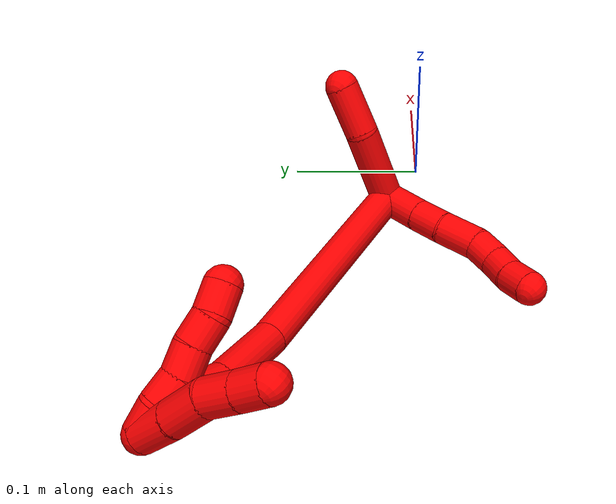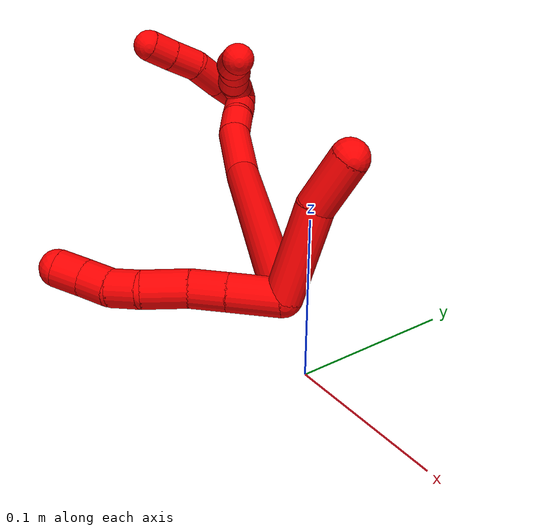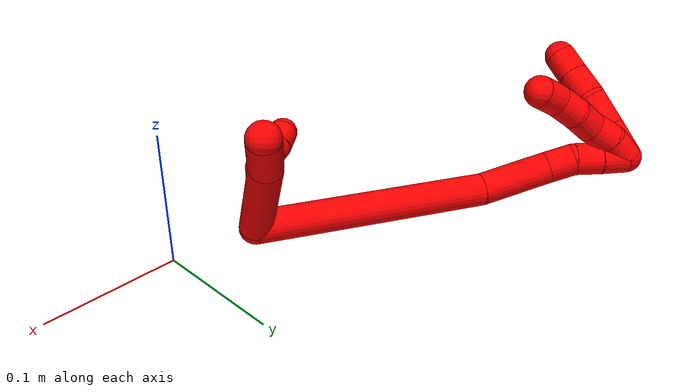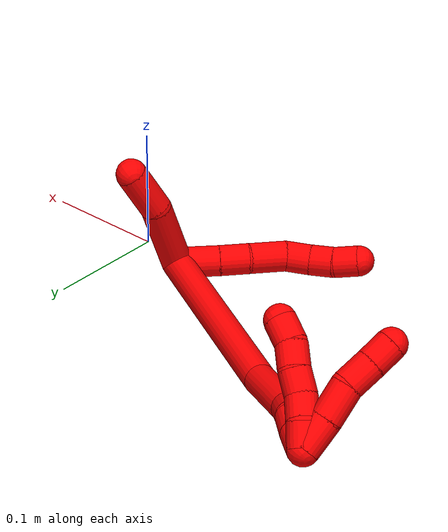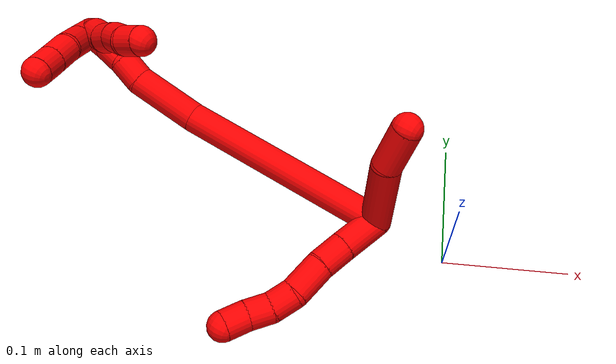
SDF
<sdf version="1.7">
 <world name="default">
  <model name="2">
   <static>0</static>
   <link name="2">
    <collision name="collision-cylinder-e_1_2_8">
     <pose>-0.013865 -0.009313 0.0044 1.12946 -0.931871 -0.616855</pose>
     <geometry><cylinder><radius>0.0125</radius><length>0.034545</length></cylinder></geometry>
     <surface>
      <friction><ode><mu>1.16</mu><mu2>1.16</mu2><slip1>0</slip1><slip2>0</slip2></ode></friction>
      <contact><ode><kp>1e+06</kp><kd>1</kd><max_vel>0</max_vel><min_depth>0.001</min_depth></ode></contact>
     </surface>
    </collision>
    <visual name="visual-cylinder-e_1_2_8">
     <pose>-0.013865 -0.009313 0.0044 1.12946 -0.931871 -0.616855</pose>
     <geometry><cylinder><radius>0.0125</radius><length>0.034545</length></cylinder></geometry>
     <material><ambient>1 0 0 1</ambient></material>
    </visual>
    <collision name="collision-cylinder-e_2_8_9">
     <pose>-0.037452 -0.025308 0.011563 1.17864 -0.93125 -0.648188</pose>
     <geometry><cylinder><radius>0.0125</radius><length>0.02423</length></cylinder></geometry>
     <surface>
      <friction><ode><mu>1.16</mu><mu2>1.16</mu2><slip1>0</slip1><slip2>0</slip2></ode></friction>
      <contact><ode><kp>1e+06</kp><kd>1</kd><max_vel>0</max_vel><min_depth>0.001</min_depth></ode></contact>
     </surface>
    </collision>
    <visual name="visual-cylinder-e_2_8_9">
     <pose>-0.037452 -0.025308 0.011563 1.17864 -0.93125 -0.648188</pose>
     <geometry><cylinder><radius>0.0125</radius><length>0.02423</length></cylinder></geometry>
     <material><ambient>1 0 0 1</ambient></material>
    </visual>
    <collision name="collision-cylinder-e_3_9_10">
     <pose>-0.06021 -0.039401 0.016152 1.32924 -1.04122 -0.844465</pose>
     <geometry><cylinder><radius>0.0125</radius><length>0.030215</length></cylinder></geometry>
     <surface>
      <friction><ode><mu>1.16</mu><mu2>1.16</mu2><slip1>0</slip1><slip2>0</slip2></ode></friction>
      <contact><ode><kp>1e+06</kp><kd>1</kd><max_vel>0</max_vel><min_depth>0.001</min_depth></ode></contact>
     </surface>
    </collision>
    <visual name="visual-cylinder-e_3_9_10">
     <pose>-0.06021 -0.039401 0.016152 1.32924 -1.04122 -0.844465</pose>
     <geometry><cylinder><radius>0.0125</radius><length>0.030215</length></cylinder></geometry>
     <material><ambient>1 0 0 1</ambient></material>
    </visual>
    <collision name="collision-cylinder-e_4_10_11">
     <pose>-0.081746 -0.050942 0.022138 0.781947 -0.966821 -0.426194</pose>
     <geometry><cylinder><radius>0.0125</radius><length>0.020647</length></cylinder></geometry>
     <surface>
      <friction><ode><mu>1.16</mu><mu2>1.16</mu2><slip1>0</slip1><slip2>0</slip2></ode></friction>
      <contact><ode><kp>1e+06</kp><kd>1</kd><max_vel>0</max_vel><min_depth>0.001</min_depth></ode></contact>
     </surface>
    </collision>
    <visual name="visual-cylinder-e_4_10_11">
     <pose>-0.081746 -0.050942 0.022138 0.781947 -0.966821 -0.426194</pose>
     <geometry><cylinder><radius>0.0125</radius><length>0.020647</length></cylinder></geometry>
     <material><ambient>1 0 0 1</ambient></material>
    </visual>
    <collision name="collision-cylinder-e_5_11_12">
     <pose>-0.096646 -0.060356 0.032049 0.742873 -0.686792 -0.276773</pose>
     <geometry><cylinder><radius>0.0125</radius><length>0.020198</length></cylinder></geometry>
     <surface>
      <friction><ode><mu>1.16</mu><mu2>1.16</mu2><slip1>0</slip1><slip2>0</slip2></ode></friction>
      <contact><ode><kp>1e+06</kp><kd>1</kd><max_vel>0</max_vel><min_depth>0.001</min_depth></ode></contact>
     </surface>
    </collision>
    <visual name="visual-cylinder-e_5_11_12">
     <pose>-0.096646 -0.060356 0.032049 0.742873 -0.686792 -0.276773</pose>
     <geometry><cylinder><radius>0.0125</radius><length>0.020198</length></cylinder></geometry>
     <material><ambient>1 0 0 1</ambient></material>
    </visual>
    <collision name="collision-cylinder-e_6_12_6">
     <pose>-0.109573 -0.072032 0.042069 0.982226 -0.703767 -0.387798</pose>
     <geometry><cylinder><radius>0.0125</radius><length>0.020165</length></cylinder></geometry>
     <surface>
      <friction><ode><mu>1.16</mu><mu2>1.16</mu2><slip1>0</slip1><slip2>0</slip2></ode></friction>
      <contact><ode><kp>1e+06</kp><kd>1</kd><max_vel>0</max_vel><min_depth>0.001</min_depth></ode></contact>
     </surface>
    </collision>
    <visual name="visual-cylinder-e_6_12_6">
     <pose>-0.109573 -0.072032 0.042069 0.982226 -0.703767 -0.387798</pose>
     <geometry><cylinder><radius>0.0125</radius><length>0.020165</length></cylinder></geometry>
     <material><ambient>1 0 0 1</ambient></material>
    </visual>
    <collision name="collision-cylinder-e_1_2_13">
     <pose>0.023652 -0.020144 0.000447 1.54859 0.865202 0.848416</pose>
     <geometry><cylinder><radius>0.0125</radius><length>0.062142</length></cylinder></geometry>
     <surface>
      <friction><ode><mu>1.16</mu><mu2>1.16</mu2><slip1>0</slip1><slip2>0</slip2></ode></friction>
      <contact><ode><kp>1e+06</kp><kd>1</kd><max_vel>0</max_vel><min_depth>0.001</min_depth></ode></contact>
     </surface>
    </collision>
    <visual name="visual-cylinder-e_1_2_13">
     <pose>0.023652 -0.020144 0.000447 1.54859 0.865202 0.848416</pose>
     <geometry><cylinder><radius>0.0125</radius><length>0.062142</length></cylinder></geometry>
     <material><ambient>1 0 0 1</ambient></material>
    </visual>
    <collision name="collision-cylinder-e_2_13_5">
     <pose>0.063778 -0.049039 -0.002322 1.92312 1.05577 1.39217</pose>
     <geometry><cylinder><radius>0.0125</radius><length>0.037858</length></cylinder></geometry>
     <surface>
      <friction><ode><mu>1.16</mu><mu2>1.16</mu2><slip1>0</slip1><slip2>0</slip2></ode></friction>
      <contact><ode><kp>1e+06</kp><kd>1</kd><max_vel>0</max_vel><min_depth>0.001</min_depth></ode></contact>
     </surface>
    </collision>
    <visual name="visual-cylinder-e_2_13_5">
     <pose>0.063778 -0.049039 -0.002322 1.92312 1.05577 1.39217</pose>
     <geometry><cylinder><radius>0.0125</radius><length>0.037858</length></cylinder></geometry>
     <material><ambient>1 0 0 1</ambient></material>
    </visual>
    <collision name="collision-cylinder-e_1_2_14">
     <pose>0.001117 -0.009583 0.088933 0.107337 0.012482 0.000671</pose>
     <geometry><cylinder><radius>0.0125</radius><length>0.178909</length></cylinder></geometry>
     <surface>
      <friction><ode><mu>1.16</mu><mu2>1.16</mu2><slip1>0</slip1><slip2>0</slip2></ode></friction>
      <contact><ode><kp>1e+06</kp><kd>1</kd><max_vel>0</max_vel><min_depth>0.001</min_depth></ode></contact>
     </surface>
    </collision>
    <visual name="visual-cylinder-e_1_2_14">
     <pose>0.001117 -0.009583 0.088933 0.107337 0.012482 0.000671</pose>
     <geometry><cylinder><radius>0.0125</radius><length>0.178909</length></cylinder></geometry>
     <material><ambient>1 0 0 1</ambient></material>
    </visual>
    <collision name="collision-cylinder-e_2_14_15">
     <pose>0.005641 -0.026449 0.204955 0.262649 0.120889 0.015987</pose>
     <geometry><cylinder><radius>0.0125</radius><length>0.056516</length></cylinder></geometry>
     <surface>
      <friction><ode><mu>1.16</mu><mu2>1.16</mu2><slip1>0</slip1><slip2>0</slip2></ode></friction>
      <contact><ode><kp>1e+06</kp><kd>1</kd><max_vel>0</max_vel><min_depth>0.001</min_depth></ode></contact>
     </surface>
    </collision>
    <visual name="visual-cylinder-e_2_14_15">
     <pose>0.005641 -0.026449 0.204955 0.262649 0.120889 0.015987</pose>
     <geometry><cylinder><radius>0.0125</radius><length>0.056516</length></cylinder></geometry>
     <material><ambient>1 0 0 1</ambient></material>
    </visual>
    <collision name="collision-cylinder-e_3_15_16">
     <pose>0.013267 -0.036447 0.241961 0.26726 0.389402 0.053007</pose>
     <geometry><cylinder><radius>0.0125</radius><length>0.022226</length></cylinder></geometry>
     <surface>
      <friction><ode><mu>1.16</mu><mu2>1.16</mu2><slip1>0</slip1><slip2>0</slip2></ode></friction>
      <contact><ode><kp>1e+06</kp><kd>1</kd><max_vel>0</max_vel><min_depth>0.001</min_depth></ode></contact>
     </surface>
    </collision>
    <visual name="visual-cylinder-e_3_15_16">
     <pose>0.013267 -0.036447 0.241961 0.26726 0.389402 0.053007</pose>
     <geometry><cylinder><radius>0.0125</radius><length>0.022226</length></cylinder></geometry>
     <material><ambient>1 0 0 1</ambient></material>
    </visual>
    <collision name="collision-cylinder-e_4_16_17">
     <pose>0.019598 -0.038998 0.26211 -0.015986 0.203485 -0.001632</pose>
     <geometry><cylinder><radius>0.0125</radius><length>0.020901</length></cylinder></geometry>
     <surface>
      <friction><ode><mu>1.16</mu><mu2>1.16</mu2><slip1>0</slip1><slip2>0</slip2></ode></friction>
      <contact><ode><kp>1e+06</kp><kd>1</kd><max_vel>0</max_vel><min_depth>0.001</min_depth></ode></contact>
     </surface>
    </collision>
    <visual name="visual-cylinder-e_4_16_17">
     <pose>0.019598 -0.038998 0.26211 -0.015986 0.203485 -0.001632</pose>
     <geometry><cylinder><radius>0.0125</radius><length>0.020901</length></cylinder></geometry>
     <material><ambient>1 0 0 1</ambient></material>
    </visual>
    <collision name="collision-cylinder-e_5_17_1">
     <pose>0.023404 -0.039044 0.282931 0.019776 0.158627 0.001572</pose>
     <geometry><cylinder><radius>0.0125</radius><length>0.021448</length></cylinder></geometry>
     <surface>
      <friction><ode><mu>1.16</mu><mu2>1.16</mu2><slip1>0</slip1><slip2>0</slip2></ode></friction>
      <contact><ode><kp>1e+06</kp><kd>1</kd><max_vel>0</max_vel><min_depth>0.001</min_depth></ode></contact>
     </surface>
    </collision>
    <visual name="visual-cylinder-e_5_17_1">
     <pose>0.023404 -0.039044 0.282931 0.019776 0.158627 0.001572</pose>
     <geometry><cylinder><radius>0.0125</radius><length>0.021448</length></cylinder></geometry>
     <material><ambient>1 0 0 1</ambient></material>
    </visual>
    <collision name="collision-cylinder-e_1_1_18">
     <pose>0.026891 -0.046091 0.286445 2.37321 0.180263 0.439865</pose>
     <geometry><cylinder><radius>0.0125</radius><length>0.02</length></cylinder></geometry>
     <surface>
      <friction><ode><mu>1.16</mu><mu2>1.16</mu2><slip1>0</slip1><slip2>0</slip2></ode></friction>
      <contact><ode><kp>1e+06</kp><kd>1</kd><max_vel>0</max_vel><min_depth>0.001</min_depth></ode></contact>
     </surface>
    </collision>
    <visual name="visual-cylinder-e_1_1_18">
     <pose>0.026891 -0.046091 0.286445 2.37321 0.180263 0.439865</pose>
     <geometry><cylinder><radius>0.0125</radius><length>0.02</length></cylinder></geometry>
     <material><ambient>1 0 0 1</ambient></material>
    </visual>
    <collision name="collision-cylinder-e_2_18_19">
     <pose>0.02911 -0.057965 0.270743 2.61321 0.042599 0.157172</pose>
     <geometry><cylinder><radius>0.0125</radius><length>0.02</length></cylinder></geometry>
     <surface>
      <friction><ode><mu>1.16</mu><mu2>1.16</mu2><slip1>0</slip1><slip2>0</slip2></ode></friction>
      <contact><ode><kp>1e+06</kp><kd>1</kd><max_vel>0</max_vel><min_depth>0.001</min_depth></ode></contact>
     </surface>
    </collision>
    <visual name="visual-cylinder-e_2_18_19">
     <pose>0.02911 -0.057965 0.270743 2.61321 0.042599 0.157172</pose>
     <geometry><cylinder><radius>0.0125</radius><length>0.02</length></cylinder></geometry>
     <material><ambient>1 0 0 1</ambient></material>
    </visual>
    <collision name="collision-cylinder-e_3_19_20">
     <pose>0.032691 -0.068073 0.254095 2.57766 0.32107 1.01943</pose>
     <geometry><cylinder><radius>0.0125</radius><length>0.02</length></cylinder></geometry>
     <surface>
      <friction><ode><mu>1.16</mu><mu2>1.16</mu2><slip1>0</slip1><slip2>0</slip2></ode></friction>
      <contact><ode><kp>1e+06</kp><kd>1</kd><max_vel>0</max_vel><min_depth>0.001</min_depth></ode></contact>
     </surface>
    </collision>
    <visual name="visual-cylinder-e_3_19_20">
     <pose>0.032691 -0.068073 0.254095 2.57766 0.32107 1.01943</pose>
     <geometry><cylinder><radius>0.0125</radius><length>0.02</length></cylinder></geometry>
     <material><ambient>1 0 0 1</ambient></material>
    </visual>
    <collision name="collision-cylinder-e_4_20_21">
     <pose>0.037163 -0.078375 0.237654 2.58588 0.132017 0.455469</pose>
     <geometry><cylinder><radius>0.0125</radius><length>0.02</length></cylinder></geometry>
     <surface>
      <friction><ode><mu>1.16</mu><mu2>1.16</mu2><slip1>0</slip1><slip2>0</slip2></ode></friction>
      <contact><ode><kp>1e+06</kp><kd>1</kd><max_vel>0</max_vel><min_depth>0.001</min_depth></ode></contact>
     </surface>
    </collision>
    <visual name="visual-cylinder-e_4_20_21">
     <pose>0.037163 -0.078375 0.237654 2.58588 0.132017 0.455469</pose>
     <geometry><cylinder><radius>0.0125</radius><length>0.02</length></cylinder></geometry>
     <material><ambient>1 0 0 1</ambient></material>
    </visual>
    <collision name="collision-cylinder-e_5_21_4">
     <pose>0.041941 -0.086599 0.220341 2.81671 0.353412 1.65649</pose>
     <geometry><cylinder><radius>0.0125</radius><length>0.02</length></cylinder></geometry>
     <surface>
      <friction><ode><mu>1.16</mu><mu2>1.16</mu2><slip1>0</slip1><slip2>0</slip2></ode></friction>
      <contact><ode><kp>1e+06</kp><kd>1</kd><max_vel>0</max_vel><min_depth>0.001</min_depth></ode></contact>
     </surface>
    </collision>
    <visual name="visual-cylinder-e_5_21_4">
     <pose>0.041941 -0.086599 0.220341 2.81671 0.353412 1.65649</pose>
     <geometry><cylinder><radius>0.0125</radius><length>0.02</length></cylinder></geometry>
     <material><ambient>1 0 0 1</ambient></material>
    </visual>
    <collision name="collision-cylinder-e_1_1_22">
     <pose>0.021112 -0.051316 0.289101 1.92185 -0.30084 -0.427214</pose>
     <geometry><cylinder><radius>0.0125</radius><length>0.0269</length></cylinder></geometry>
     <surface>
      <friction><ode><mu>1.16</mu><mu2>1.16</mu2><slip1>0</slip1><slip2>0</slip2></ode></friction>
      <contact><ode><kp>1e+06</kp><kd>1</kd><max_vel>0</max_vel><min_depth>0.001</min_depth></ode></contact>
     </surface>
    </collision>
    <visual name="visual-cylinder-e_1_1_22">
     <pose>0.021112 -0.051316 0.289101 1.92185 -0.30084 -0.427214</pose>
     <geometry><cylinder><radius>0.0125</radius><length>0.0269</length></cylinder></geometry>
     <material><ambient>1 0 0 1</ambient></material>
    </visual>
    <collision name="collision-cylinder-e_2_22_23">
     <pose>0.013719 -0.076146 0.279217 1.97536 -0.240637 -0.362553</pose>
     <geometry><cylinder><radius>0.0125</radius><length>0.028601</length></cylinder></geometry>
     <surface>
      <friction><ode><mu>1.16</mu><mu2>1.16</mu2><slip1>0</slip1><slip2>0</slip2></ode></friction>
      <contact><ode><kp>1e+06</kp><kd>1</kd><max_vel>0</max_vel><min_depth>0.001</min_depth></ode></contact>
     </surface>
    </collision>
    <visual name="visual-cylinder-e_2_22_23">
     <pose>0.013719 -0.076146 0.279217 1.97536 -0.240637 -0.362553</pose>
     <geometry><cylinder><radius>0.0125</radius><length>0.028601</length></cylinder></geometry>
     <material><ambient>1 0 0 1</ambient></material>
    </visual>
    <collision name="collision-cylinder-e_3_23_24">
     <pose>0.004476 -0.098711 0.270455 1.89516 -0.513891 -0.700932</pose>
     <geometry><cylinder><radius>0.0125</radius><length>0.02374</length></cylinder></geometry>
     <surface>
      <friction><ode><mu>1.16</mu><mu2>1.16</mu2><slip1>0</slip1><slip2>0</slip2></ode></friction>
      <contact><ode><kp>1e+06</kp><kd>1</kd><max_vel>0</max_vel><min_depth>0.001</min_depth></ode></contact>
     </surface>
    </collision>
    <visual name="visual-cylinder-e_3_23_24">
     <pose>0.004476 -0.098711 0.270455 1.89516 -0.513891 -0.700932</pose>
     <geometry><cylinder><radius>0.0125</radius><length>0.02374</length></cylinder></geometry>
     <material><ambient>1 0 0 1</ambient></material>
    </visual>
    <collision name="collision-cylinder-e_4_24_3">
     <pose>-0.006153 -0.117245 0.264256 1.89183 -0.480061 -0.654252</pose>
     <geometry><cylinder><radius>0.0125</radius><length>0.020758</length></cylinder></geometry>
     <surface>
      <friction><ode><mu>1.16</mu><mu2>1.16</mu2><slip1>0</slip1><slip2>0</slip2></ode></friction>
      <contact><ode><kp>1e+06</kp><kd>1</kd><max_vel>0</max_vel><min_depth>0.001</min_depth></ode></contact>
     </surface>
    </collision>
    <visual name="visual-cylinder-e_4_24_3">
     <pose>-0.006153 -0.117245 0.264256 1.89183 -0.480061 -0.654252</pose>
     <geometry><cylinder><radius>0.0125</radius><length>0.020758</length></cylinder></geometry>
     <material><ambient>1 0 0 1</ambient></material>
    </visual>
    <collision name="collision-sphere-3">
     <pose>-0.010946 -0.125981 0.261351 0 -0 0</pose>
     <geometry><sphere><radius>0.0125</radius></sphere></geometry>
     <surface>
      <friction><ode><mu>1.16</mu><mu2>1.16</mu2><slip1>0</slip1><slip2>0</slip2></ode></friction>
      <contact><ode><kp>1e+06</kp><kd>1</kd><max_vel>0</max_vel><min_depth>0.001</min_depth></ode></contact>
     </surface>
    </collision>
    <visual name="visual-sphere-3">
     <pose>-0.010946 -0.125981 0.261351 0 -0 0</pose>
     <geometry><sphere><radius>0.0125</radius></sphere></geometry>
     <material><ambient>1 0 0 1</ambient></material>
    </visual>
    <collision name="collision-sphere-24">
     <pose>-0.001359 -0.108509 0.267161 0 -0 0</pose>
     <geometry><sphere><radius>0.0125</radius></sphere></geometry>
     <surface>
      <friction><ode><mu>1.16</mu><mu2>1.16</mu2><slip1>0</slip1><slip2>0</slip2></ode></friction>
      <contact><ode><kp>1e+06</kp><kd>1</kd><max_vel>0</max_vel><min_depth>0.001</min_depth></ode></contact>
     </surface>
    </collision>
    <visual name="visual-sphere-24">
     <pose>-0.001359 -0.108509 0.267161 0 -0 0</pose>
     <geometry><sphere><radius>0.0125</radius></sphere></geometry>
     <material><ambient>1 0 0 1</ambient></material>
    </visual>
    <collision name="collision-sphere-23">
     <pose>0.010311 -0.088914 0.27375 0 -0 0</pose>
     <geometry><sphere><radius>0.0125</radius></sphere></geometry>
     <surface>
      <friction><ode><mu>1.16</mu><mu2>1.16</mu2><slip1>0</slip1><slip2>0</slip2></ode></friction>
      <contact><ode><kp>1e+06</kp><kd>1</kd><max_vel>0</max_vel><min_depth>0.001</min_depth></ode></contact>
     </surface>
    </collision>
    <visual name="visual-sphere-23">
     <pose>0.010311 -0.088914 0.27375 0 -0 0</pose>
     <geometry><sphere><radius>0.0125</radius></sphere></geometry>
     <material><ambient>1 0 0 1</ambient></material>
    </visual>
    <collision name="collision-sphere-22">
     <pose>0.017127 -0.063379 0.284684 0 -0 0</pose>
     <geometry><sphere><radius>0.0125</radius></sphere></geometry>
     <surface>
      <friction><ode><mu>1.16</mu><mu2>1.16</mu2><slip1>0</slip1><slip2>0</slip2></ode></friction>
      <contact><ode><kp>1e+06</kp><kd>1</kd><max_vel>0</max_vel><min_depth>0.001</min_depth></ode></contact>
     </surface>
    </collision>
    <visual name="visual-sphere-22">
     <pose>0.017127 -0.063379 0.284684 0 -0 0</pose>
     <geometry><sphere><radius>0.0125</radius></sphere></geometry>
     <material><ambient>1 0 0 1</ambient></material>
    </visual>
    <collision name="collision-sphere-4">
     <pose>0.045402 -0.089594 0.21145 0 -0 0</pose>
     <geometry><sphere><radius>0.0125</radius></sphere></geometry>
     <surface>
      <friction><ode><mu>1.16</mu><mu2>1.16</mu2><slip1>0</slip1><slip2>0</slip2></ode></friction>
      <contact><ode><kp>1e+06</kp><kd>1</kd><max_vel>0</max_vel><min_depth>0.001</min_depth></ode></contact>
     </surface>
    </collision>
    <visual name="visual-sphere-4">
     <pose>0.045402 -0.089594 0.21145 0 -0 0</pose>
     <geometry><sphere><radius>0.0125</radius></sphere></geometry>
     <material><ambient>1 0 0 1</ambient></material>
    </visual>
    <collision name="collision-sphere-21">
     <pose>0.03848 -0.083605 0.229232 0 -0 0</pose>
     <geometry><sphere><radius>0.0125</radius></sphere></geometry>
     <surface>
      <friction><ode><mu>1.16</mu><mu2>1.16</mu2><slip1>0</slip1><slip2>0</slip2></ode></friction>
      <contact><ode><kp>1e+06</kp><kd>1</kd><max_vel>0</max_vel><min_depth>0.001</min_depth></ode></contact>
     </surface>
    </collision>
    <visual name="visual-sphere-21">
     <pose>0.03848 -0.083605 0.229232 0 -0 0</pose>
     <geometry><sphere><radius>0.0125</radius></sphere></geometry>
     <material><ambient>1 0 0 1</ambient></material>
    </visual>
    <collision name="collision-sphere-20">
     <pose>0.035847 -0.073145 0.246075 0 -0 0</pose>
     <geometry><sphere><radius>0.0125</radius></sphere></geometry>
     <surface>
      <friction><ode><mu>1.16</mu><mu2>1.16</mu2><slip1>0</slip1><slip2>0</slip2></ode></friction>
      <contact><ode><kp>1e+06</kp><kd>1</kd><max_vel>0</max_vel><min_depth>0.001</min_depth></ode></contact>
     </surface>
    </collision>
    <visual name="visual-sphere-20">
     <pose>0.035847 -0.073145 0.246075 0 -0 0</pose>
     <geometry><sphere><radius>0.0125</radius></sphere></geometry>
     <material><ambient>1 0 0 1</ambient></material>
    </visual>
    <collision name="collision-sphere-12">
     <pose>-0.103049 -0.065638 0.037801 0 -0 0</pose>
     <geometry><sphere><radius>0.0125</radius></sphere></geometry>
     <surface>
      <friction><ode><mu>1.16</mu><mu2>1.16</mu2><slip1>0</slip1><slip2>0</slip2></ode></friction>
      <contact><ode><kp>1e+06</kp><kd>1</kd><max_vel>0</max_vel><min_depth>0.001</min_depth></ode></contact>
     </surface>
    </collision>
    <visual name="visual-sphere-12">
     <pose>-0.103049 -0.065638 0.037801 0 -0 0</pose>
     <geometry><sphere><radius>0.0125</radius></sphere></geometry>
     <material><ambient>1 0 0 1</ambient></material>
    </visual>
    <collision name="collision-sphere-11">
     <pose>-0.090243 -0.055073 0.026297 0 -0 0</pose>
     <geometry><sphere><radius>0.0125</radius></sphere></geometry>
     <surface>
      <friction><ode><mu>1.16</mu><mu2>1.16</mu2><slip1>0</slip1><slip2>0</slip2></ode></friction>
      <contact><ode><kp>1e+06</kp><kd>1</kd><max_vel>0</max_vel><min_depth>0.001</min_depth></ode></contact>
     </surface>
    </collision>
    <visual name="visual-sphere-11">
     <pose>-0.090243 -0.055073 0.026297 0 -0 0</pose>
     <geometry><sphere><radius>0.0125</radius></sphere></geometry>
     <material><ambient>1 0 0 1</ambient></material>
    </visual>
    <collision name="collision-sphere-10">
     <pose>-0.073249 -0.046811 0.017978 0 -0 0</pose>
     <geometry><sphere><radius>0.0125</radius></sphere></geometry>
     <surface>
      <friction><ode><mu>1.16</mu><mu2>1.16</mu2><slip1>0</slip1><slip2>0</slip2></ode></friction>
      <contact><ode><kp>1e+06</kp><kd>1</kd><max_vel>0</max_vel><min_depth>0.001</min_depth></ode></contact>
     </surface>
    </collision>
    <visual name="visual-sphere-10">
     <pose>-0.073249 -0.046811 0.017978 0 -0 0</pose>
     <geometry><sphere><radius>0.0125</radius></sphere></geometry>
     <material><ambient>1 0 0 1</ambient></material>
    </visual>
    <collision name="collision-sphere-9">
     <pose>-0.047172 -0.03199 0.014326 0 -0 0</pose>
     <geometry><sphere><radius>0.0125</radius></sphere></geometry>
     <surface>
      <friction><ode><mu>1.16</mu><mu2>1.16</mu2><slip1>0</slip1><slip2>0</slip2></ode></friction>
      <contact><ode><kp>1e+06</kp><kd>1</kd><max_vel>0</max_vel><min_depth>0.001</min_depth></ode></contact>
     </surface>
    </collision>
    <visual name="visual-sphere-9">
     <pose>-0.047172 -0.03199 0.014326 0 -0 0</pose>
     <geometry><sphere><radius>0.0125</radius></sphere></geometry>
     <material><ambient>1 0 0 1</ambient></material>
    </visual>
    <collision name="collision-sphere-2">
     <geometry><sphere><radius>0.0125</radius></sphere></geometry>
     <surface>
      <friction><ode><mu>1.16</mu><mu2>1.16</mu2><slip1>0</slip1><slip2>0</slip2></ode></friction>
      <contact><ode><kp>1e+06</kp><kd>1</kd><max_vel>0</max_vel><min_depth>0.001</min_depth></ode></contact>
     </surface>
    </collision>
    <visual name="visual-sphere-2">
     <geometry><sphere><radius>0.0125</radius></sphere></geometry>
     <material><ambient>1 0 0 1</ambient></material>
    </visual>
    <collision name="collision-sphere-19">
     <pose>0.029536 -0.063001 0.262114 0 -0 0</pose>
     <geometry><sphere><radius>0.0125</radius></sphere></geometry>
     <surface>
      <friction><ode><mu>1.16</mu><mu2>1.16</mu2><slip1>0</slip1><slip2>0</slip2></ode></friction>
      <contact><ode><kp>1e+06</kp><kd>1</kd><max_vel>0</max_vel><min_depth>0.001</min_depth></ode></contact>
     </surface>
    </collision>
    <visual name="visual-sphere-19">
     <pose>0.029536 -0.063001 0.262114 0 -0 0</pose>
     <geometry><sphere><radius>0.0125</radius></sphere></geometry>
     <material><ambient>1 0 0 1</ambient></material>
    </visual>
    <collision name="collision-sphere-8">
     <pose>-0.027731 -0.018627 0.008799 0 -0 0</pose>
     <geometry><sphere><radius>0.0125</radius></sphere></geometry>
     <surface>
      <friction><ode><mu>1.16</mu><mu2>1.16</mu2><slip1>0</slip1><slip2>0</slip2></ode></friction>
      <contact><ode><kp>1e+06</kp><kd>1</kd><max_vel>0</max_vel><min_depth>0.001</min_depth></ode></contact>
     </surface>
    </collision>
    <visual name="visual-sphere-8">
     <pose>-0.027731 -0.018627 0.008799 0 -0 0</pose>
     <geometry><sphere><radius>0.0125</radius></sphere></geometry>
     <material><ambient>1 0 0 1</ambient></material>
    </visual>
    <collision name="collision-sphere-6">
     <pose>-0.116098 -0.078425 0.046336 0 -0 0</pose>
     <geometry><sphere><radius>0.0125</radius></sphere></geometry>
     <surface>
      <friction><ode><mu>1.16</mu><mu2>1.16</mu2><slip1>0</slip1><slip2>0</slip2></ode></friction>
      <contact><ode><kp>1e+06</kp><kd>1</kd><max_vel>0</max_vel><min_depth>0.001</min_depth></ode></contact>
     </surface>
    </collision>
    <visual name="visual-sphere-6">
     <pose>-0.116098 -0.078425 0.046336 0 -0 0</pose>
     <geometry><sphere><radius>0.0125</radius></sphere></geometry>
     <material><ambient>1 0 0 1</ambient></material>
    </visual>
    <collision name="collision-sphere-13">
     <pose>0.047304 -0.040288 0.000895 0 -0 0</pose>
     <geometry><sphere><radius>0.0125</radius></sphere></geometry>
     <surface>
      <friction><ode><mu>1.16</mu><mu2>1.16</mu2><slip1>0</slip1><slip2>0</slip2></ode></friction>
      <contact><ode><kp>1e+06</kp><kd>1</kd><max_vel>0</max_vel><min_depth>0.001</min_depth></ode></contact>
     </surface>
    </collision>
    <visual name="visual-sphere-13">
     <pose>0.047304 -0.040288 0.000895 0 -0 0</pose>
     <geometry><sphere><radius>0.0125</radius></sphere></geometry>
     <material><ambient>1 0 0 1</ambient></material>
    </visual>
    <collision name="collision-sphere-5">
     <pose>0.080251 -0.05779 -0.00554 0 -0 0</pose>
     <geometry><sphere><radius>0.0125</radius></sphere></geometry>
     <surface>
      <friction><ode><mu>1.16</mu><mu2>1.16</mu2><slip1>0</slip1><slip2>0</slip2></ode></friction>
      <contact><ode><kp>1e+06</kp><kd>1</kd><max_vel>0</max_vel><min_depth>0.001</min_depth></ode></contact>
     </surface>
    </collision>
    <visual name="visual-sphere-5">
     <pose>0.080251 -0.05779 -0.00554 0 -0 0</pose>
     <geometry><sphere><radius>0.0125</radius></sphere></geometry>
     <material><ambient>1 0 0 1</ambient></material>
    </visual>
    <collision name="collision-sphere-14">
     <pose>0.002233 -0.019165 0.177866 0 -0 0</pose>
     <geometry><sphere><radius>0.0125</radius></sphere></geometry>
     <surface>
      <friction><ode><mu>1.16</mu><mu2>1.16</mu2><slip1>0</slip1><slip2>0</slip2></ode></friction>
      <contact><ode><kp>1e+06</kp><kd>1</kd><max_vel>0</max_vel><min_depth>0.001</min_depth></ode></contact>
     </surface>
    </collision>
    <visual name="visual-sphere-14">
     <pose>0.002233 -0.019165 0.177866 0 -0 0</pose>
     <geometry><sphere><radius>0.0125</radius></sphere></geometry>
     <material><ambient>1 0 0 1</ambient></material>
    </visual>
    <collision name="collision-sphere-15">
     <pose>0.009049 -0.033732 0.232045 0 -0 0</pose>
     <geometry><sphere><radius>0.0125</radius></sphere></geometry>
     <surface>
      <friction><ode><mu>1.16</mu><mu2>1.16</mu2><slip1>0</slip1><slip2>0</slip2></ode></friction>
      <contact><ode><kp>1e+06</kp><kd>1</kd><max_vel>0</max_vel><min_depth>0.001</min_depth></ode></contact>
     </surface>
    </collision>
    <visual name="visual-sphere-15">
     <pose>0.009049 -0.033732 0.232045 0 -0 0</pose>
     <geometry><sphere><radius>0.0125</radius></sphere></geometry>
     <material><ambient>1 0 0 1</ambient></material>
    </visual>
    <collision name="collision-sphere-16">
     <pose>0.017486 -0.039162 0.251877 0 -0 0</pose>
     <geometry><sphere><radius>0.0125</radius></sphere></geometry>
     <surface>
      <friction><ode><mu>1.16</mu><mu2>1.16</mu2><slip1>0</slip1><slip2>0</slip2></ode></friction>
      <contact><ode><kp>1e+06</kp><kd>1</kd><max_vel>0</max_vel><min_depth>0.001</min_depth></ode></contact>
     </surface>
    </collision>
    <visual name="visual-sphere-16">
     <pose>0.017486 -0.039162 0.251877 0 -0 0</pose>
     <geometry><sphere><radius>0.0125</radius></sphere></geometry>
     <material><ambient>1 0 0 1</ambient></material>
    </visual>
    <collision name="collision-sphere-17">
     <pose>0.02171 -0.038835 0.272344 0 -0 0</pose>
     <geometry><sphere><radius>0.0125</radius></sphere></geometry>
     <surface>
      <friction><ode><mu>1.16</mu><mu2>1.16</mu2><slip1>0</slip1><slip2>0</slip2></ode></friction>
      <contact><ode><kp>1e+06</kp><kd>1</kd><max_vel>0</max_vel><min_depth>0.001</min_depth></ode></contact>
     </surface>
    </collision>
    <visual name="visual-sphere-17">
     <pose>0.02171 -0.038835 0.272344 0 -0 0</pose>
     <geometry><sphere><radius>0.0125</radius></sphere></geometry>
     <material><ambient>1 0 0 1</ambient></material>
    </visual>
    <collision name="collision-sphere-1">
     <pose>0.025098 -0.039254 0.293519 0 -0 0</pose>
     <geometry><sphere><radius>0.0125</radius></sphere></geometry>
     <surface>
      <friction><ode><mu>1.16</mu><mu2>1.16</mu2><slip1>0</slip1><slip2>0</slip2></ode></friction>
      <contact><ode><kp>1e+06</kp><kd>1</kd><max_vel>0</max_vel><min_depth>0.001</min_depth></ode></contact>
     </surface>
    </collision>
    <visual name="visual-sphere-1">
     <pose>0.025098 -0.039254 0.293519 0 -0 0</pose>
     <geometry><sphere><radius>0.0125</radius></sphere></geometry>
     <material><ambient>1 0 0 1</ambient></material>
    </visual>
    <collision name="collision-sphere-18">
     <pose>0.028684 -0.052928 0.279371 0 -0 0</pose>
     <geometry><sphere><radius>0.0125</radius></sphere></geometry>
     <surface>
      <friction><ode><mu>1.16</mu><mu2>1.16</mu2><slip1>0</slip1><slip2>0</slip2></ode></friction>
      <contact><ode><kp>1e+06</kp><kd>1</kd><max_vel>0</max_vel><min_depth>0.001</min_depth></ode></contact>
     </surface>
    </collision>
    <visual name="visual-sphere-18">
     <pose>0.028684 -0.052928 0.279371 0 -0 0</pose>
     <geometry><sphere><radius>0.0125</radius></sphere></geometry>
     <material><ambient>1 0 0 1</ambient></material>
    </visual>
    <inertial>
     <pose>0.001132 -0.039609 0.133715 0 -0 0</pose>
     <mass>0.75</mass>
     <inertia>
      <ixx>0.000543</ixx>
      <ixy>0</ixy>
      <ixz>0</ixz>
      <iyy>0.000513</iyy>
      <iyz>0</iyz>
      <izz>9.3e-05</izz>
     </inertia>
    </inertial>
   </link>
   <pose>-0.055546 0.025393 0.013786 -1.69592 -0.545146 1.11805</pose>
  </model>
 </world>
</sdf>
